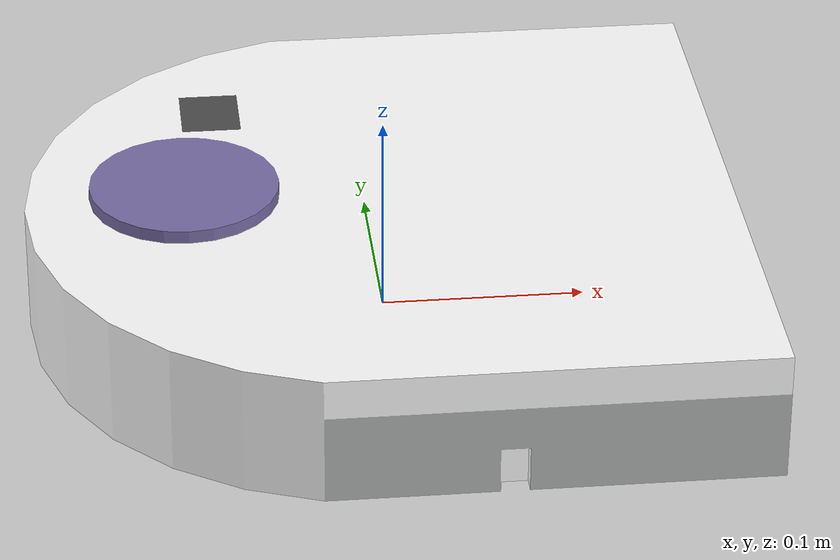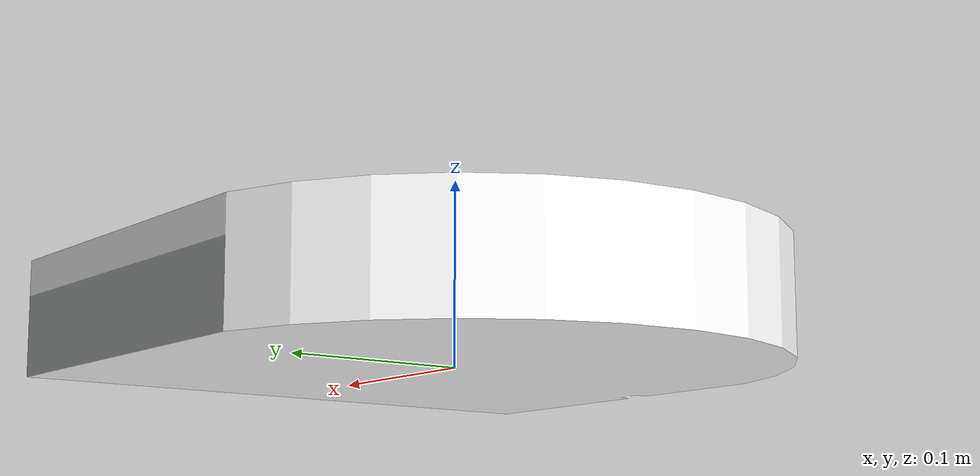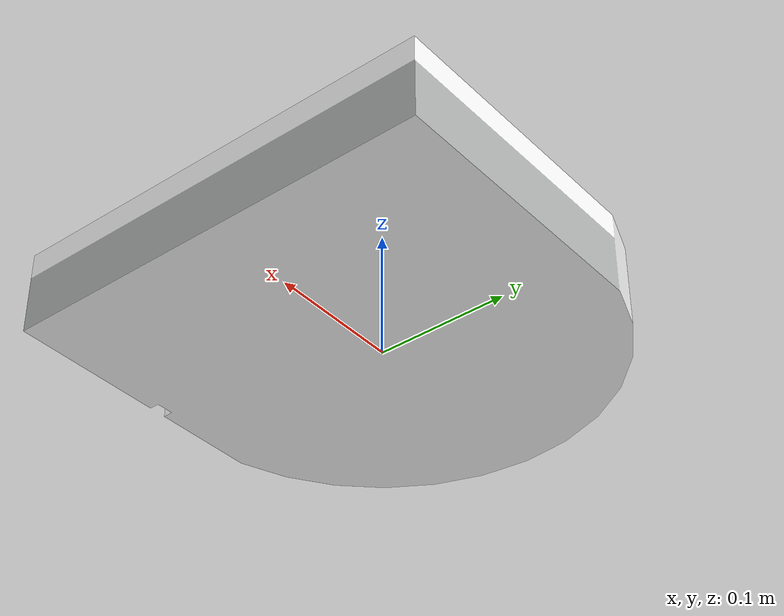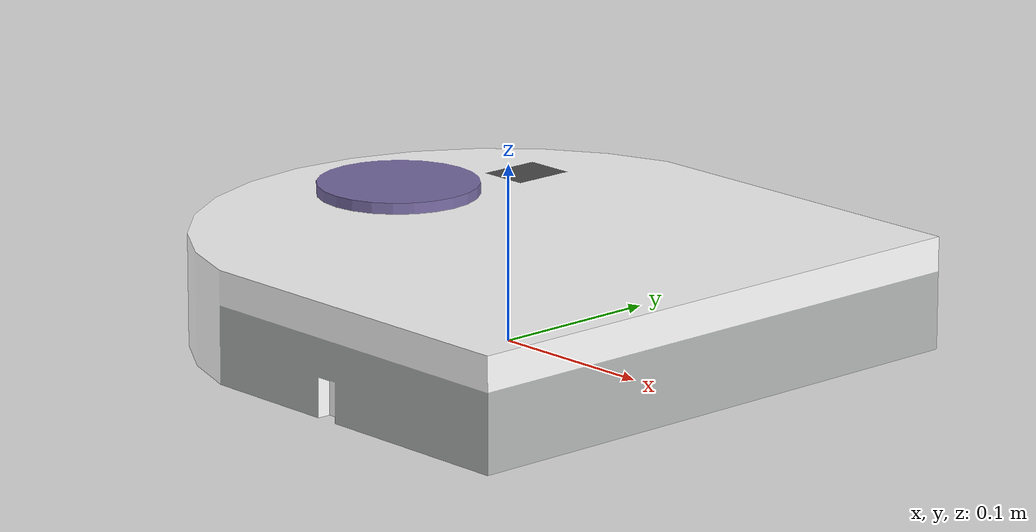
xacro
<?xml version="1.0"?>
<robot xmlns:xacro="http://ros.org/wiki/xacro" name="neato">
    <link name="base_link">

      <inertial>
        <mass value="4.1" />
        <origin xyz="0 0 0" />
        <inertia ixx="0.01152" ixy="0.0" ixz="0.0" iyy="0.01152" iyz="0.0" izz="0.0218" />
      </inertial>

      <visual>
        <origin xyz="0.17 -0.17 0" rpy="0 0 1.57" />
        <geometry>
          <mesh filename="package://neato_node/meshes/neato.dae" scale="0.025 0.025 0.025"/>
        </geometry>
      </visual>

    </link>
</robot>
